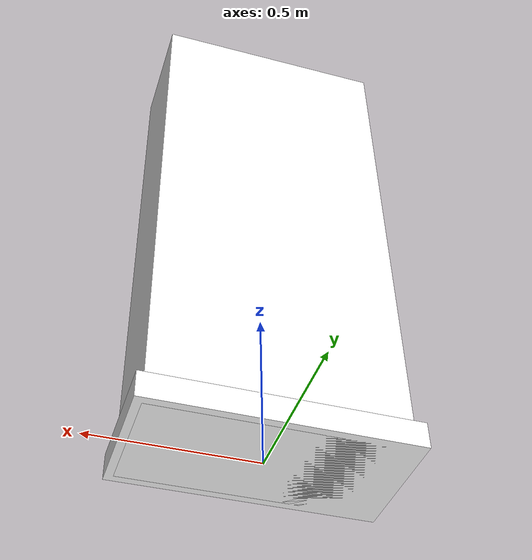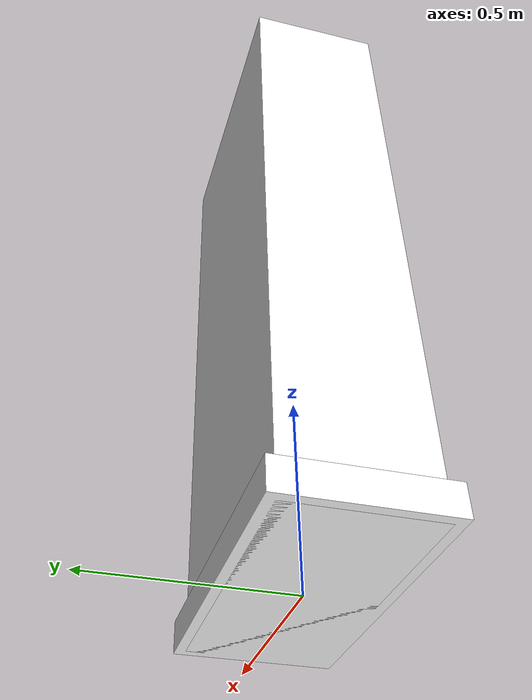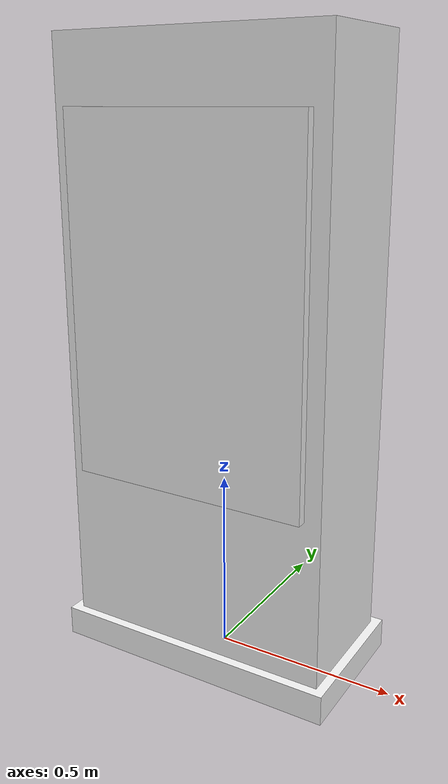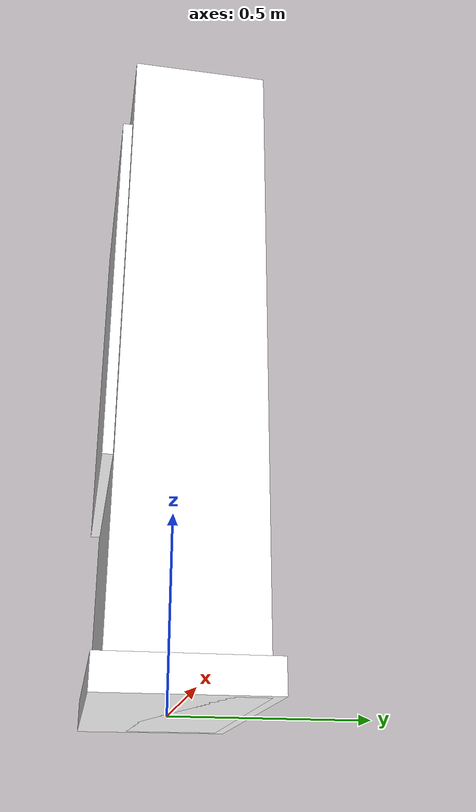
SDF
<?xml version="1.0"?>
<sdf version="1.10">
  <model name="control_panel">
    <static>true</static>
      <link name="body">
        <collision name="cabinet_col"><pose>0 0 0.825 0 0 0</pose>
          <geometry><box><size>0.75 0.35 1.65</size></box></geometry></collision>
        <visual name="cabinet_vis"><pose>0 0 0.825 0 0 0</pose>
          <geometry><box><size>0.75 0.35 1.65</size></box></geometry>
          <material>
          <diffuse>1 1 1 1</diffuse>
          <specular>0.15 0.15 0.15 1</specular>
          <pbr><metal>
            <albedo_map>model://slam_assets/materials/textures/metal_panel.png</albedo_map>
            <roughness>0.85</roughness><metalness>0.0</metalness>
          </metal></pbr>
        </material>
        </visual>
        <visual name="face_vis"><pose>0 -0.18 1.00 0 0 0</pose>
          <geometry><box><size>0.66 0.04 0.95</size></box></geometry>
          <material>
          <diffuse>1 1 1 1</diffuse>
          <specular>0.15 0.15 0.15 1</specular>
          <pbr><metal>
            <albedo_map>model://slam_assets/materials/textures/control_face.png</albedo_map>
            <roughness>0.85</roughness><metalness>0.0</metalness>
          </metal></pbr>
        </material>
        </visual>
        <collision name="plinth_col"><pose>0 0 0.04 0 0 0</pose>
          <geometry><box><size>0.80 0.40 0.08</size></box></geometry></collision>
        <visual name="plinth_vis"><pose>0 0 0.04 0 0 0</pose>
          <geometry><box><size>0.80 0.40 0.08</size></box></geometry>
          <material>
          <diffuse>1 1 1 1</diffuse>
          <specular>0.15 0.15 0.15 1</specular>
          <pbr><metal>
            <albedo_map>model://slam_assets/materials/textures/metal_brushed.png</albedo_map>
            <roughness>0.85</roughness><metalness>0.0</metalness>
          </metal></pbr>
        </material>
        </visual>
      </link>
  </model>
</sdf>
